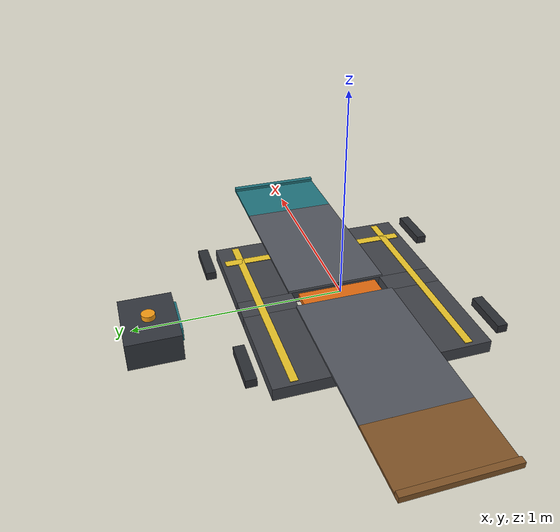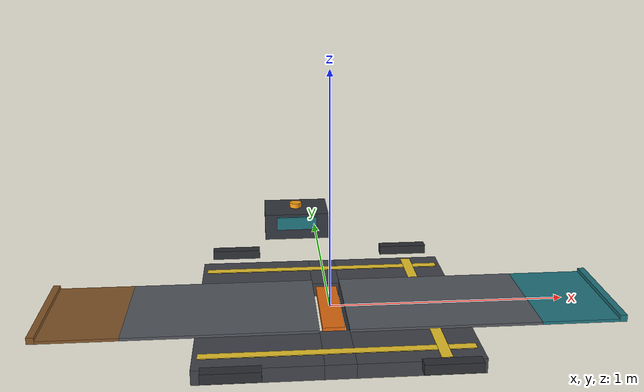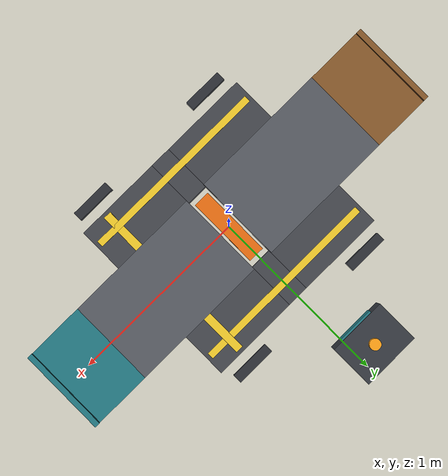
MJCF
<mujoco model="swap_dock">
  <!-- GENERATED by envs/swap/dock_mjcf.py --write-import -- do not edit; change DockLayout there and re-run. No rover, no spare pack: the Isaac scene spawns those (envs/swap/isaac_swap.py). -->
  <compiler angle="radian"/>

  <option timestep="0.001" integrator="implicitfast" cone="elliptic"/>

  <worldbody>
    <body name="dock_base">
      <inertial pos="0 0 -0.029" mass="120" diaginertia="10.036 12.136 22.1"/>
      <geom name="dock_pad_fore" size="0.245 0.5 0.03" pos="0.305 0 -0.029" type="box" rgba="0.255 0.265 0.29 1" mass="0"/>
      <geom name="dock_pad_aft" size="0.245 0.5 0.03" pos="-0.305 0 -0.029" type="box" rgba="0.255 0.265 0.29 1" mass="0"/>
      <geom name="dock_pad_left" size="0.06 0.135 0.03" pos="0 0.365 -0.029" type="box" rgba="0.255 0.265 0.29 1" mass="0"/>
      <geom name="dock_pad_right" size="0.06 0.135 0.03" pos="0 -0.365 -0.029" type="box" rgba="0.255 0.265 0.29 1" mass="0"/>
      <geom name="dock_lane_l" size="0.53 0.018 0.0015" pos="0 0.4 0.0025" type="box" contype="0" conaffinity="0" group="2" rgba="0.93 0.78 0.16 1" mass="0"/>
      <geom name="dock_lane_r" size="0.53 0.018 0.0015" pos="0 -0.4 0.0025" type="box" contype="0" conaffinity="0" group="2" rgba="0.93 0.78 0.16 1" mass="0"/>
      <geom name="dock_stopbar" size="0.022 0.48 0.0015" pos="0.4 0 0.0025" type="box" contype="0" conaffinity="0" group="2" rgba="0.93 0.78 0.16 1" mass="0"/>
      <geom name="dock_kerb_fl" size="0.11 0.025 0.02" pos="0.4 0.575 0.021" type="box" rgba="0.175 0.185 0.205 1" mass="0"/>
      <geom name="dock_kerb_fr" size="0.11 0.025 0.02" pos="0.4 -0.575 0.021" type="box" rgba="0.175 0.185 0.205 1" mass="0"/>
      <geom name="dock_kerb_al" size="0.11 0.025 0.02" pos="-0.4 0.575 0.021" type="box" rgba="0.175 0.185 0.205 1" mass="0"/>
      <geom name="dock_kerb_ar" size="0.11 0.025 0.02" pos="-0.4 -0.575 0.021" type="box" rgba="0.175 0.185 0.205 1" mass="0"/>
      <geom name="dock_deck_aft" size="0.39 0.245 0.006" pos="-0.45 0 0.006" type="box" rgba="0.33 0.345 0.375 1" mass="0"/>
      <geom name="dock_station_full_stow" size="0.16 0.245 0.006" pos="-1 0 0.006" type="box" rgba="0.52 0.34 0.16 1" mass="0"/>
      <geom name="dock_stop_full_stow" size="0.015 0.245 0.014" pos="-1.175 0 0.014" type="box" rgba="0.52 0.34 0.16 1" mass="0"/>
      <geom name="dock_deck_fore" size="0.39 0.245 0.006" pos="0.45 0 0.006" type="box" rgba="0.33 0.345 0.375 1" mass="0"/>
      <geom name="dock_station_empty_ready" size="0.16 0.245 0.006" pos="1 0 0.006" type="box" rgba="0.13 0.46 0.5 1" mass="0"/>
      <geom name="dock_stop_empty_ready" size="0.015 0.245 0.014" pos="1.175 0 0.014" type="box" rgba="0.13 0.46 0.5 1" mass="0"/>
      <geom name="dock_cabinet" size="0.16 0.12 0.065" pos="-0.1 0.92 0.065" type="box" rgba="0.2 0.215 0.245 1" mass="0"/>
      <geom name="dock_cabinet_face" size="0.1 0.006 0.032" pos="-0.1 0.795 0.085" type="box" contype="0" conaffinity="0" group="2" rgba="0.13 0.46 0.5 1" mass="0"/>
      <geom name="dock_beacon" size="0.03 0.012" pos="-0.1 0.92 0.143" type="cylinder" rgba="0.98 0.62 0.08 1" mass="0"/>
      <site name="dock_approach" size="0.01" pos="-1.5 0 0.001" group="3"/>
      <site name="dock_berth" size="0.01" pos="0 0 0.001" group="3"/>
      <site name="dock_empty_ready" size="0.01" pos="1 0 0.0395" group="3"/>
      <site name="dock_full_stow" size="0.01" pos="-1 0 0.0395" group="3"/>
      <body name="dock_carriage" pos="0 0 -0.012" gravcomp="1">
        <inertial pos="0 0 0" mass="2" diaginertia="0.0267627 0.001446 0.0280167"/>
        <joint name="dock_lift" type="slide" range="0 0.06" damping="40" limited="true"/>
        <geom name="dock_carriage_plate" size="0.045 0.2 0.012" type="box" contype="0" conaffinity="0" rgba="0.9 0.42 0.06 1" mass="0"/>
        <site name="dock_pack_attach" size="0.01" pos="0 0 0.012" group="3"/>
      </body>
    </body>
  </worldbody>

  <actuator>
    <general name="dock_lift_act" joint="dock_lift" ctrlrange="0 0.06" ctrllimited="true" biastype="affine" gainprm="20000" biasprm="0 -20000 -400"/>
  </actuator>
</mujoco>
